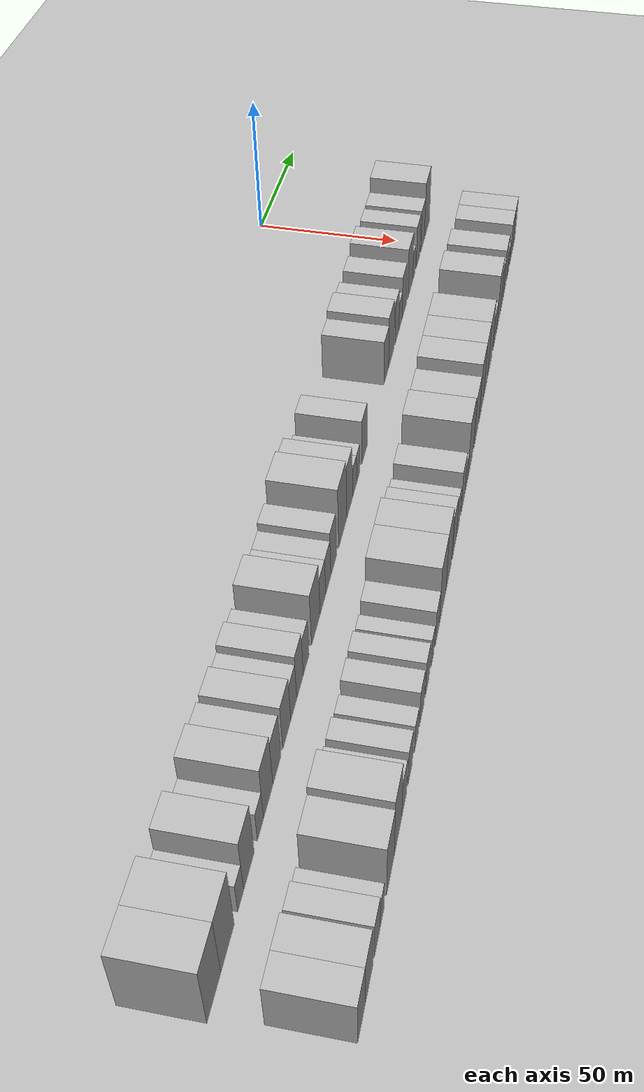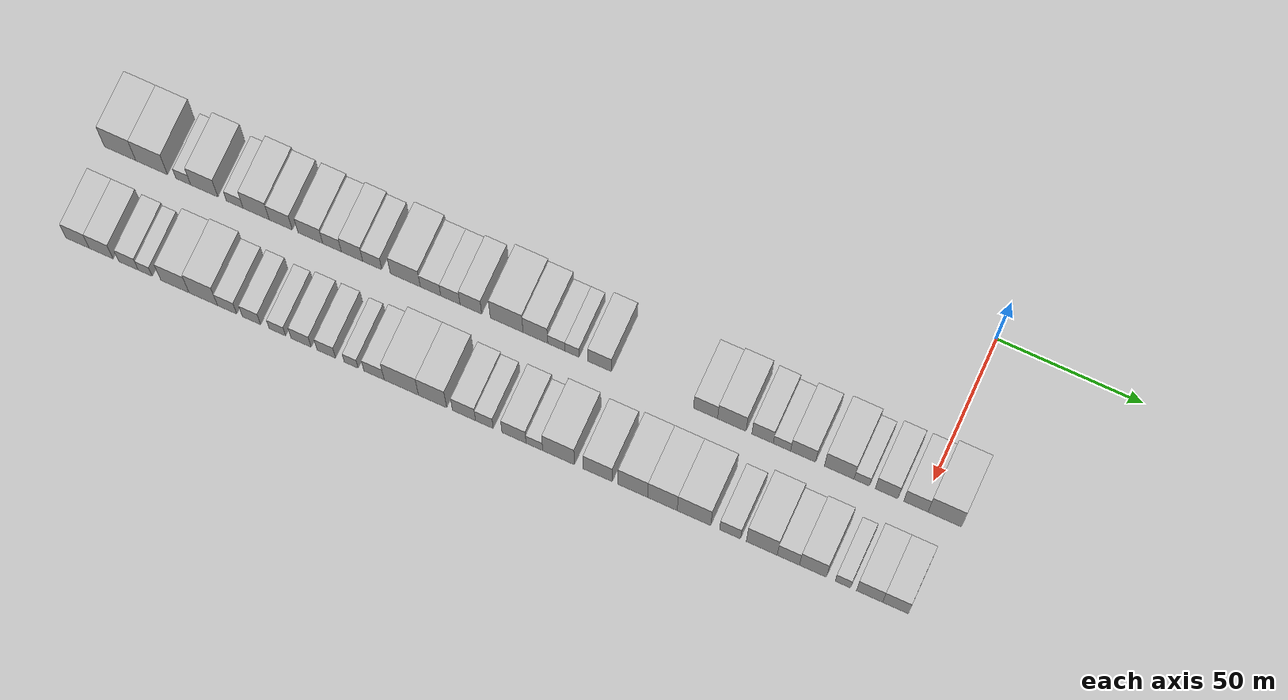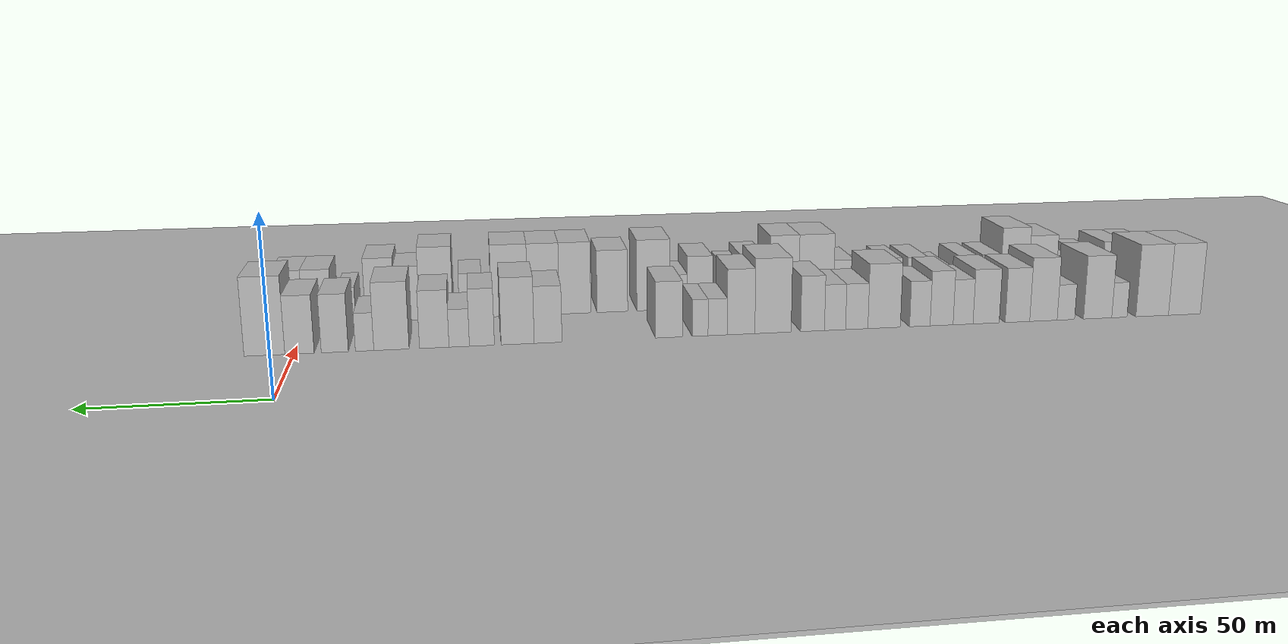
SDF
<sdf version="1.6">
 <world name="default">
  <include><name>ground_plane_1</name><uri>model://HANNAS_ground_plane</uri></include>
  <include>
   <name>ground_plane_2</name>
   <uri>model://HANNAS_ground_plane</uri>
   <pose>100 0 0  0 0 0</pose>
  </include>
  <model name="building_1">
   <static>1</static>
   <pose>50.0000 -278.4697 0 0.000000 0.000000 0.000000</pose>
   <link name="link">
    <pose>0 0 12.00 0 0 0</pose>
    <collision name="collision"><geometry><box><size>20.0000 11.0606 24.0000</size></box></geometry></collision>
    <visual name="visual">
     <cast_shadows>0</cast_shadows>
     <geometry><box><size>20.0000 11.0606 24.0000</size></box></geometry>
     <material>
      <script>
       <uri>model://HANNAS_wall/materials/scripts</uri>
       <uri>model://HANNAS_wall/materials/textures</uri>
       <name>vrc/HANNAS_wall</name>
      </script>
     </material>
    </visual>
   </link>
  </model>
  <model name="building_2">
   <static>1</static>
   <pose>50.0000 -267.3348 0 0.000000 0.000000 0.000000</pose>
   <link name="link">
    <pose>0 0 12.00 0 0 0</pose>
    <collision name="collision"><geometry><box><size>20.0000 11.2092 24.0000</size></box></geometry></collision>
    <visual name="visual">
     <cast_shadows>0</cast_shadows>
     <geometry><box><size>20.0000 11.2092 24.0000</size></box></geometry>
     <material>
      <script>
       <uri>model://HANNAS_wall/materials/scripts</uri>
       <uri>model://HANNAS_wall/materials/textures</uri>
       <name>vrc/HANNAS_wall</name>
      </script>
     </material>
    </visual>
   </link>
  </model>
  <model name="building_3">
   <static>1</static>
   <pose>50.0000 -256.1176 0 0.000000 0.000000 0.000000</pose>
   <link name="link">
    <pose>0 0 6.00 0 0 0</pose>
    <collision name="collision"><geometry><box><size>20.0000 5.2254 12.0000</size></box></geometry></collision>
    <visual name="visual">
     <cast_shadows>0</cast_shadows>
     <geometry><box><size>20.0000 5.2254 12.0000</size></box></geometry>
     <material>
      <script>
       <uri>model://HANNAS_wall/materials/scripts</uri>
       <uri>model://HANNAS_wall/materials/textures</uri>
       <name>vrc/HANNAS_wall</name>
      </script>
     </material>
    </visual>
   </link>
  </model>
  <model name="building_4">
   <static>1</static>
   <pose>50.0000 -248.7218 0 0.000000 0.000000 0.000000</pose>
   <link name="link">
    <pose>0 0 10.50 0 0 0</pose>
    <collision name="collision"><geometry><box><size>20.0000 9.5662 21.0000</size></box></geometry></collision>
    <visual name="visual">
     <cast_shadows>0</cast_shadows>
     <geometry><box><size>20.0000 9.5662 21.0000</size></box></geometry>
     <material>
      <script>
       <uri>model://HANNAS_wall/materials/scripts</uri>
       <uri>model://HANNAS_wall/materials/textures</uri>
       <name>vrc/HANNAS_wall</name>
      </script>
     </material>
    </visual>
   </link>
  </model>
  <model name="building_5">
   <static>1</static>
   <pose>50.0000 -238.0001 0 0.000000 0.000000 0.000000</pose>
   <link name="link">
    <pose>0 0 6.00 0 0 0</pose>
    <collision name="collision"><geometry><box><size>20.0000 5.8772 12.0000</size></box></geometry></collision>
    <visual name="visual">
     <cast_shadows>0</cast_shadows>
     <geometry><box><size>20.0000 5.8772 12.0000</size></box></geometry>
     <material>
      <script>
       <uri>model://HANNAS_wall/materials/scripts</uri>
       <uri>model://HANNAS_wall/materials/textures</uri>
       <name>vrc/HANNAS_wall</name>
      </script>
     </material>
    </visual>
   </link>
  </model>
  <model name="building_6">
   <static>1</static>
   <pose>50.0000 -230.4664 0 0.000000 0.000000 0.000000</pose>
   <link name="link">
    <pose>0 0 10.50 0 0 0</pose>
    <collision name="collision"><geometry><box><size>20.0000 9.1902 21.0000</size></box></geometry></collision>
    <visual name="visual">
     <cast_shadows>0</cast_shadows>
     <geometry><box><size>20.0000 9.1902 21.0000</size></box></geometry>
     <material>
      <script>
       <uri>model://HANNAS_wall/materials/scripts</uri>
       <uri>model://HANNAS_wall/materials/textures</uri>
       <name>vrc/HANNAS_wall</name>
      </script>
     </material>
    </visual>
   </link>
  </model>
  <model name="building_7">
   <static>1</static>
   <pose>50.0000 -221.8036 0 0.000000 0.000000 0.000000</pose>
   <link name="link">
    <pose>0 0 9.00 0 0 0</pose>
    <collision name="collision"><geometry><box><size>20.0000 8.1353 18.0000</size></box></geometry></collision>
    <visual name="visual">
     <cast_shadows>0</cast_shadows>
     <geometry><box><size>20.0000 8.1353 18.0000</size></box></geometry>
     <material>
      <script>
       <uri>model://HANNAS_wall/materials/scripts</uri>
       <uri>model://HANNAS_wall/materials/textures</uri>
       <name>vrc/HANNAS_wall</name>
      </script>
     </material>
    </visual>
   </link>
  </model>
  <model name="building_8">
   <static>1</static>
   <pose>50.0000 -211.4116 0 0.000000 0.000000 0.000000</pose>
   <link name="link">
    <pose>0 0 9.00 0 0 0</pose>
    <collision name="collision"><geometry><box><size>20.0000 8.6487 18.0000</size></box></geometry></collision>
    <visual name="visual">
     <cast_shadows>0</cast_shadows>
     <geometry><box><size>20.0000 8.6487 18.0000</size></box></geometry>
     <material>
      <script>
       <uri>model://HANNAS_wall/materials/scripts</uri>
       <uri>model://HANNAS_wall/materials/textures</uri>
       <name>vrc/HANNAS_wall</name>
      </script>
     </material>
    </visual>
   </link>
  </model>
  <model name="building_9">
   <static>1</static>
   <pose>50.0000 -203.8114 0 0.000000 0.000000 0.000000</pose>
   <link name="link">
    <pose>0 0 7.50 0 0 0</pose>
    <collision name="collision"><geometry><box><size>20.0000 6.5516 15.0000</size></box></geometry></collision>
    <visual name="visual">
     <cast_shadows>0</cast_shadows>
     <geometry><box><size>20.0000 6.5516 15.0000</size></box></geometry>
     <material>
      <script>
       <uri>model://HANNAS_wall/materials/scripts</uri>
       <uri>model://HANNAS_wall/materials/textures</uri>
       <name>vrc/HANNAS_wall</name>
      </script>
     </material>
    </visual>
   </link>
  </model>
  <model name="building_10">
   <static>1</static>
   <pose>50.0000 -196.7801 0 0.000000 0.000000 0.000000</pose>
   <link name="link">
    <pose>0 0 9.00 0 0 0</pose>
    <collision name="collision"><geometry><box><size>20.0000 7.5111 18.0000</size></box></geometry></collision>
    <visual name="visual">
     <cast_shadows>0</cast_shadows>
     <geometry><box><size>20.0000 7.5111 18.0000</size></box></geometry>
     <material>
      <script>
       <uri>model://HANNAS_wall/materials/scripts</uri>
       <uri>model://HANNAS_wall/materials/textures</uri>
       <name>vrc/HANNAS_wall</name>
      </script>
     </material>
    </visual>
   </link>
  </model>
  <model name="building_11">
   <static>1</static>
   <pose>50.0000 -189.6941 0 0.000000 0.000000 0.000000</pose>
   <link name="link">
    <pose>0 0 7.50 0 0 0</pose>
    <collision name="collision"><geometry><box><size>20.0000 6.6609 15.0000</size></box></geometry></collision>
    <visual name="visual">
     <cast_shadows>0</cast_shadows>
     <geometry><box><size>20.0000 6.6609 15.0000</size></box></geometry>
     <material>
      <script>
       <uri>model://HANNAS_wall/materials/scripts</uri>
       <uri>model://HANNAS_wall/materials/textures</uri>
       <name>vrc/HANNAS_wall</name>
      </script>
     </material>
    </visual>
   </link>
  </model>
  <model name="building_12">
   <static>1</static>
   <pose>50.0000 -178.1327 0 0.000000 0.000000 0.000000</pose>
   <link name="link">
    <pose>0 0 10.50 0 0 0</pose>
    <collision name="collision"><geometry><box><size>20.0000 10.4620 21.0000</size></box></geometry></collision>
    <visual name="visual">
     <cast_shadows>0</cast_shadows>
     <geometry><box><size>20.0000 10.4620 21.0000</size></box></geometry>
     <material>
      <script>
       <uri>model://HANNAS_wall/materials/scripts</uri>
       <uri>model://HANNAS_wall/materials/textures</uri>
       <name>vrc/HANNAS_wall</name>
      </script>
     </material>
    </visual>
   </link>
  </model>
  <model name="building_13">
   <static>1</static>
   <pose>50.0000 -169.3278 0 0.000000 0.000000 0.000000</pose>
   <link name="link">
    <pose>0 0 7.50 0 0 0</pose>
    <collision name="collision"><geometry><box><size>20.0000 7.1477 15.0000</size></box></geometry></collision>
    <visual name="visual">
     <cast_shadows>0</cast_shadows>
     <geometry><box><size>20.0000 7.1477 15.0000</size></box></geometry>
     <material>
      <script>
       <uri>model://HANNAS_wall/materials/scripts</uri>
       <uri>model://HANNAS_wall/materials/textures</uri>
       <name>vrc/HANNAS_wall</name>
      </script>
     </material>
    </visual>
   </link>
  </model>
  <model name="building_14">
   <static>1</static>
   <pose>50.0000 -162.3910 0 0.000000 0.000000 0.000000</pose>
   <link name="link">
    <pose>0 0 7.50 0 0 0</pose>
    <collision name="collision"><geometry><box><size>20.0000 6.7259 15.0000</size></box></geometry></collision>
    <visual name="visual">
     <cast_shadows>0</cast_shadows>
     <geometry><box><size>20.0000 6.7259 15.0000</size></box></geometry>
     <material>
      <script>
       <uri>model://HANNAS_wall/materials/scripts</uri>
       <uri>model://HANNAS_wall/materials/textures</uri>
       <name>vrc/HANNAS_wall</name>
      </script>
     </material>
    </visual>
   </link>
  </model>
  <model name="building_15">
   <static>1</static>
   <pose>50.0000 -155.2637 0 0.000000 0.000000 0.000000</pose>
   <link name="link">
    <pose>0 0 9.00 0 0 0</pose>
    <collision name="collision"><geometry><box><size>20.0000 7.5286 18.0000</size></box></geometry></collision>
    <visual name="visual">
     <cast_shadows>0</cast_shadows>
     <geometry><box><size>20.0000 7.5286 18.0000</size></box></geometry>
     <material>
      <script>
       <uri>model://HANNAS_wall/materials/scripts</uri>
       <uri>model://HANNAS_wall/materials/textures</uri>
       <name>vrc/HANNAS_wall</name>
      </script>
     </material>
    </visual>
   </link>
  </model>
  <model name="building_16">
   <static>1</static>
   <pose>50.0000 -142.8023 0 0.000000 0.000000 0.000000</pose>
   <link name="link">
    <pose>0 0 12.00 0 0 0</pose>
    <collision name="collision"><geometry><box><size>20.0000 11.3943 24.0000</size></box></geometry></collision>
    <visual name="visual">
     <cast_shadows>0</cast_shadows>
     <geometry><box><size>20.0000 11.3943 24.0000</size></box></geometry>
     <material>
      <script>
       <uri>model://HANNAS_wall/materials/scripts</uri>
       <uri>model://HANNAS_wall/materials/textures</uri>
       <name>vrc/HANNAS_wall</name>
      </script>
     </material>
    </visual>
   </link>
  </model>
  <model name="building_17">
   <static>1</static>
   <pose>50.0000 -132.8097 0 0.000000 0.000000 0.000000</pose>
   <link name="link">
    <pose>0 0 10.50 0 0 0</pose>
    <collision name="collision"><geometry><box><size>20.0000 8.5907 21.0000</size></box></geometry></collision>
    <visual name="visual">
     <cast_shadows>0</cast_shadows>
     <geometry><box><size>20.0000 8.5907 21.0000</size></box></geometry>
     <material>
      <script>
       <uri>model://HANNAS_wall/materials/scripts</uri>
       <uri>model://HANNAS_wall/materials/textures</uri>
       <name>vrc/HANNAS_wall</name>
      </script>
     </material>
    </visual>
   </link>
  </model>
  <model name="building_18">
   <static>1</static>
   <pose>50.0000 -125.5334 0 0.000000 0.000000 0.000000</pose>
   <link name="link">
    <pose>0 0 6.00 0 0 0</pose>
    <collision name="collision"><geometry><box><size>20.0000 5.9619 12.0000</size></box></geometry></collision>
    <visual name="visual">
     <cast_shadows>0</cast_shadows>
     <geometry><box><size>20.0000 5.9619 12.0000</size></box></geometry>
     <material>
      <script>
       <uri>model://HANNAS_wall/materials/scripts</uri>
       <uri>model://HANNAS_wall/materials/textures</uri>
       <name>vrc/HANNAS_wall</name>
      </script>
     </material>
    </visual>
   </link>
  </model>
  <model name="building_19">
   <static>1</static>
   <pose>50.0000 -120.1101 0 0.000000 0.000000 0.000000</pose>
   <link name="link">
    <pose>0 0 6.00 0 0 0</pose>
    <collision name="collision"><geometry><box><size>20.0000 4.8848 12.0000</size></box></geometry></collision>
    <visual name="visual">
     <cast_shadows>0</cast_shadows>
     <geometry><box><size>20.0000 4.8848 12.0000</size></box></geometry>
     <material>
      <script>
       <uri>model://HANNAS_wall/materials/scripts</uri>
       <uri>model://HANNAS_wall/materials/textures</uri>
       <name>vrc/HANNAS_wall</name>
      </script>
     </material>
    </visual>
   </link>
  </model>
  <model name="building_20">
   <static>1</static>
   <pose>50.0000 -110.5472 0 0.000000 0.000000 0.000000</pose>
   <link name="link">
    <pose>0 0 9.00 0 0 0</pose>
    <collision name="collision"><geometry><box><size>20.0000 8.2411 18.0000</size></box></geometry></collision>
    <visual name="visual">
     <cast_shadows>0</cast_shadows>
     <geometry><box><size>20.0000 8.2411 18.0000</size></box></geometry>
     <material>
      <script>
       <uri>model://HANNAS_wall/materials/scripts</uri>
       <uri>model://HANNAS_wall/materials/textures</uri>
       <name>vrc/HANNAS_wall</name>
      </script>
     </material>
    </visual>
   </link>
  </model>
  <model name="building_21">
   <static>1</static>
   <pose>50.0000 -73.9878 0 0.000000 0.000000 0.000000</pose>
   <link name="link">
    <pose>0 0 9.00 0 0 0</pose>
    <collision name="collision"><geometry><box><size>20.0000 8.2926 18.0000</size></box></geometry></collision>
    <visual name="visual">
     <cast_shadows>0</cast_shadows>
     <geometry><box><size>20.0000 8.2926 18.0000</size></box></geometry>
     <material>
      <script>
       <uri>model://HANNAS_wall/materials/scripts</uri>
       <uri>model://HANNAS_wall/materials/textures</uri>
       <name>vrc/HANNAS_wall</name>
      </script>
     </material>
    </visual>
   </link>
  </model>
  <model name="building_22">
   <static>1</static>
   <pose>50.0000 -64.9480 0 0.000000 0.000000 0.000000</pose>
   <link name="link">
    <pose>0 0 10.50 0 0 0</pose>
    <collision name="collision"><geometry><box><size>20.0000 9.7870 21.0000</size></box></geometry></collision>
    <visual name="visual">
     <cast_shadows>0</cast_shadows>
     <geometry><box><size>20.0000 9.7870 21.0000</size></box></geometry>
     <material>
      <script>
       <uri>model://HANNAS_wall/materials/scripts</uri>
       <uri>model://HANNAS_wall/materials/textures</uri>
       <name>vrc/HANNAS_wall</name>
      </script>
     </material>
    </visual>
   </link>
  </model>
  <model name="building_23">
   <static>1</static>
   <pose>50.0000 -54.3780 0 0.000000 0.000000 0.000000</pose>
   <link name="link">
    <pose>0 0 9.00 0 0 0</pose>
    <collision name="collision"><geometry><box><size>20.0000 7.3532 18.0000</size></box></geometry></collision>
    <visual name="visual">
     <cast_shadows>0</cast_shadows>
     <geometry><box><size>20.0000 7.3532 18.0000</size></box></geometry>
     <material>
      <script>
       <uri>model://HANNAS_wall/materials/scripts</uri>
       <uri>model://HANNAS_wall/materials/textures</uri>
       <name>vrc/HANNAS_wall</name>
      </script>
     </material>
    </visual>
   </link>
  </model>
  <model name="building_24">
   <static>1</static>
   <pose>50.0000 -47.7225 0 0.000000 0.000000 0.000000</pose>
   <link name="link">
    <pose>0 0 6.00 0 0 0</pose>
    <collision name="collision"><geometry><box><size>20.0000 5.9577 12.0000</size></box></geometry></collision>
    <visual name="visual">
     <cast_shadows>0</cast_shadows>
     <geometry><box><size>20.0000 5.9577 12.0000</size></box></geometry>
     <material>
      <script>
       <uri>model://HANNAS_wall/materials/scripts</uri>
       <uri>model://HANNAS_wall/materials/textures</uri>
       <name>vrc/HANNAS_wall</name>
      </script>
     </material>
    </visual>
   </link>
  </model>
  <model name="building_25">
   <static>1</static>
   <pose>50.0000 -40.4584 0 0.000000 0.000000 0.000000</pose>
   <link name="link">
    <pose>0 0 9.00 0 0 0</pose>
    <collision name="collision"><geometry><box><size>20.0000 8.5706 18.0000</size></box></geometry></collision>
    <visual name="visual">
     <cast_shadows>0</cast_shadows>
     <geometry><box><size>20.0000 8.5706 18.0000</size></box></geometry>
     <material>
      <script>
       <uri>model://HANNAS_wall/materials/scripts</uri>
       <uri>model://HANNAS_wall/materials/textures</uri>
       <name>vrc/HANNAS_wall</name>
      </script>
     </material>
    </visual>
   </link>
  </model>
  <model name="building_26">
   <static>1</static>
   <pose>50.0000 -28.0884 0 0.000000 0.000000 0.000000</pose>
   <link name="link">
    <pose>0 0 10.50 0 0 0</pose>
    <collision name="collision"><geometry><box><size>20.0000 10.1693 21.0000</size></box></geometry></collision>
    <visual name="visual">
     <cast_shadows>0</cast_shadows>
     <geometry><box><size>20.0000 10.1693 21.0000</size></box></geometry>
     <material>
      <script>
       <uri>model://HANNAS_wall/materials/scripts</uri>
       <uri>model://HANNAS_wall/materials/textures</uri>
       <name>vrc/HANNAS_wall</name>
      </script>
     </material>
    </visual>
   </link>
  </model>
  <model name="building_27">
   <static>1</static>
   <pose>50.0000 -20.3685 0 0.000000 0.000000 0.000000</pose>
   <link name="link">
    <pose>0 0 6.00 0 0 0</pose>
    <collision name="collision"><geometry><box><size>20.0000 5.2705 12.0000</size></box></geometry></collision>
    <visual name="visual">
     <cast_shadows>0</cast_shadows>
     <geometry><box><size>20.0000 5.2705 12.0000</size></box></geometry>
     <material>
      <script>
       <uri>model://HANNAS_wall/materials/scripts</uri>
       <uri>model://HANNAS_wall/materials/textures</uri>
       <name>vrc/HANNAS_wall</name>
      </script>
     </material>
    </visual>
   </link>
  </model>
  <model name="building_28">
   <static>1</static>
   <pose>50.0000 -11.8762 0 0.000000 0.000000 0.000000</pose>
   <link name="link">
    <pose>0 0 9.00 0 0 0</pose>
    <collision name="collision"><geometry><box><size>20.0000 7.7143 18.0000</size></box></geometry></collision>
    <visual name="visual">
     <cast_shadows>0</cast_shadows>
     <geometry><box><size>20.0000 7.7143 18.0000</size></box></geometry>
     <material>
      <script>
       <uri>model://HANNAS_wall/materials/scripts</uri>
       <uri>model://HANNAS_wall/materials/textures</uri>
       <name>vrc/HANNAS_wall</name>
      </script>
     </material>
    </visual>
   </link>
  </model>
  <model name="building_29">
   <static>1</static>
   <pose>50.0000 -1.8797 0 0.000000 0.000000 0.000000</pose>
   <link name="link">
    <pose>0 0 9.00 0 0 0</pose>
    <collision name="collision"><geometry><box><size>20.0000 8.2786 18.0000</size></box></geometry></collision>
    <visual name="visual">
     <cast_shadows>0</cast_shadows>
     <geometry><box><size>20.0000 8.2786 18.0000</size></box></geometry>
     <material>
      <script>
       <uri>model://HANNAS_wall/materials/scripts</uri>
       <uri>model://HANNAS_wall/materials/textures</uri>
       <name>vrc/HANNAS_wall</name>
      </script>
     </material>
    </visual>
   </link>
  </model>
  <model name="building_30">
   <static>1</static>
   <pose>50.0000 7.9761 0 0.000000 0.000000 0.000000</pose>
   <link name="link">
    <pose>0 0 12.00 0 0 0</pose>
    <collision name="collision"><geometry><box><size>20.0000 11.4330 24.0000</size></box></geometry></collision>
    <visual name="visual">
     <cast_shadows>0</cast_shadows>
     <geometry><box><size>20.0000 11.4330 24.0000</size></box></geometry>
     <material>
      <script>
       <uri>model://HANNAS_wall/materials/scripts</uri>
       <uri>model://HANNAS_wall/materials/textures</uri>
       <name>vrc/HANNAS_wall</name>
      </script>
     </material>
    </visual>
   </link>
  </model>
  <model name="building_61">
   <static>1</static>
   <pose>82.0000 -277.8554 0 0.000000 0.000000 0.000000</pose>
   <link name="link">
    <pose>0 0 9.00 0 0 0</pose>
    <collision name="collision"><geometry><box><size>20.0000 8.2891 18.0000</size></box></geometry></collision>
    <visual name="visual">
     <cast_shadows>0</cast_shadows>
     <geometry><box><size>20.0000 8.2891 18.0000</size></box></geometry>
     <material>
      <script>
       <uri>model://HANNAS_wall/materials/scripts</uri>
       <uri>model://HANNAS_wall/materials/textures</uri>
       <name>vrc/HANNAS_wall</name>
      </script>
     </material>
    </visual>
   </link>
  </model>
  <model name="building_62">
   <static>1</static>
   <pose>82.0000 -269.5396 0 0.000000 0.000000 0.000000</pose>
   <link name="link">
    <pose>0 0 9.00 0 0 0</pose>
    <collision name="collision"><geometry><box><size>20.0000 8.3425 18.0000</size></box></geometry></collision>
    <visual name="visual">
     <cast_shadows>0</cast_shadows>
     <geometry><box><size>20.0000 8.3425 18.0000</size></box></geometry>
     <material>
      <script>
       <uri>model://HANNAS_wall/materials/scripts</uri>
       <uri>model://HANNAS_wall/materials/textures</uri>
       <name>vrc/HANNAS_wall</name>
      </script>
     </material>
    </visual>
   </link>
  </model>
  <model name="building_63">
   <static>1</static>
   <pose>82.0000 -259.9513 0 0.000000 0.000000 0.000000</pose>
   <link name="link">
    <pose>0 0 7.50 0 0 0</pose>
    <collision name="collision"><geometry><box><size>20.0000 6.8341 15.0000</size></box></geometry></collision>
    <visual name="visual">
     <cast_shadows>0</cast_shadows>
     <geometry><box><size>20.0000 6.8341 15.0000</size></box></geometry>
     <material>
      <script>
       <uri>model://HANNAS_wall/materials/scripts</uri>
       <uri>model://HANNAS_wall/materials/textures</uri>
       <name>vrc/HANNAS_wall</name>
      </script>
     </material>
    </visual>
   </link>
  </model>
  <model name="building_64">
   <static>1</static>
   <pose>82.0000 -254.0857 0 0.000000 0.000000 0.000000</pose>
   <link name="link">
    <pose>0 0 6.00 0 0 0</pose>
    <collision name="collision"><geometry><box><size>20.0000 4.8971 12.0000</size></box></geometry></collision>
    <visual name="visual">
     <cast_shadows>0</cast_shadows>
     <geometry><box><size>20.0000 4.8971 12.0000</size></box></geometry>
     <material>
      <script>
       <uri>model://HANNAS_wall/materials/scripts</uri>
       <uri>model://HANNAS_wall/materials/textures</uri>
       <name>vrc/HANNAS_wall</name>
      </script>
     </material>
    </visual>
   </link>
  </model>
  <model name="building_65">
   <static>1</static>
   <pose>82.0000 -243.6845 0 0.000000 0.000000 0.000000</pose>
   <link name="link">
    <pose>0 0 10.50 0 0 0</pose>
    <collision name="collision"><geometry><box><size>20.0000 9.9052 21.0000</size></box></geometry></collision>
    <visual name="visual">
     <cast_shadows>0</cast_shadows>
     <geometry><box><size>20.0000 9.9052 21.0000</size></box></geometry>
     <material>
      <script>
       <uri>model://HANNAS_wall/materials/scripts</uri>
       <uri>model://HANNAS_wall/materials/textures</uri>
       <name>vrc/HANNAS_wall</name>
      </script>
     </material>
    </visual>
   </link>
  </model>
  <model name="building_66">
   <static>1</static>
   <pose>82.0000 -233.7292 0 0.000000 0.000000 0.000000</pose>
   <link name="link">
    <pose>0 0 12.00 0 0 0</pose>
    <collision name="collision"><geometry><box><size>20.0000 10.0055 24.0000</size></box></geometry></collision>
    <visual name="visual">
     <cast_shadows>0</cast_shadows>
     <geometry><box><size>20.0000 10.0055 24.0000</size></box></geometry>
     <material>
      <script>
       <uri>model://HANNAS_wall/materials/scripts</uri>
       <uri>model://HANNAS_wall/materials/textures</uri>
       <name>vrc/HANNAS_wall</name>
      </script>
     </material>
    </visual>
   </link>
  </model>
  <model name="building_67">
   <static>1</static>
   <pose>82.0000 -225.3629 0 0.000000 0.000000 0.000000</pose>
   <link name="link">
    <pose>0 0 7.50 0 0 0</pose>
    <collision name="collision"><geometry><box><size>20.0000 6.7270 15.0000</size></box></geometry></collision>
    <visual name="visual">
     <cast_shadows>0</cast_shadows>
     <geometry><box><size>20.0000 6.7270 15.0000</size></box></geometry>
     <material>
      <script>
       <uri>model://HANNAS_wall/materials/scripts</uri>
       <uri>model://HANNAS_wall/materials/textures</uri>
       <name>vrc/HANNAS_wall</name>
      </script>
     </material>
    </visual>
   </link>
  </model>
  <model name="building_68">
   <static>1</static>
   <pose>82.0000 -216.8171 0 0.000000 0.000000 0.000000</pose>
   <link name="link">
    <pose>0 0 7.50 0 0 0</pose>
    <collision name="collision"><geometry><box><size>20.0000 6.3647 15.0000</size></box></geometry></collision>
    <visual name="visual">
     <cast_shadows>0</cast_shadows>
     <geometry><box><size>20.0000 6.3647 15.0000</size></box></geometry>
     <material>
      <script>
       <uri>model://HANNAS_wall/materials/scripts</uri>
       <uri>model://HANNAS_wall/materials/textures</uri>
       <name>vrc/HANNAS_wall</name>
      </script>
     </material>
    </visual>
   </link>
  </model>
  <model name="building_69">
   <static>1</static>
   <pose>82.0000 -207.7804 0 0.000000 0.000000 0.000000</pose>
   <link name="link">
    <pose>0 0 6.00 0 0 0</pose>
    <collision name="collision"><geometry><box><size>20.0000 5.7086 12.0000</size></box></geometry></collision>
    <visual name="visual">
     <cast_shadows>0</cast_shadows>
     <geometry><box><size>20.0000 5.7086 12.0000</size></box></geometry>
     <material>
      <script>
       <uri>model://HANNAS_wall/materials/scripts</uri>
       <uri>model://HANNAS_wall/materials/textures</uri>
       <name>vrc/HANNAS_wall</name>
      </script>
     </material>
    </visual>
   </link>
  </model>
  <model name="building_70">
   <static>1</static>
   <pose>82.0000 -199.4276 0 0.000000 0.000000 0.000000</pose>
   <link name="link">
    <pose>0 0 7.50 0 0 0</pose>
    <collision name="collision"><geometry><box><size>20.0000 6.9970 15.0000</size></box></geometry></collision>
    <visual name="visual">
     <cast_shadows>0</cast_shadows>
     <geometry><box><size>20.0000 6.9970 15.0000</size></box></geometry>
     <material>
      <script>
       <uri>model://HANNAS_wall/materials/scripts</uri>
       <uri>model://HANNAS_wall/materials/textures</uri>
       <name>vrc/HANNAS_wall</name>
      </script>
     </material>
    </visual>
   </link>
  </model>
  <model name="building_71">
   <static>1</static>
   <pose>82.0000 -190.6926 0 0.000000 0.000000 0.000000</pose>
   <link name="link">
    <pose>0 0 7.50 0 0 0</pose>
    <collision name="collision"><geometry><box><size>20.0000 6.4731 15.0000</size></box></geometry></collision>
    <visual name="visual">
     <cast_shadows>0</cast_shadows>
     <geometry><box><size>20.0000 6.4731 15.0000</size></box></geometry>
     <material>
      <script>
       <uri>model://HANNAS_wall/materials/scripts</uri>
       <uri>model://HANNAS_wall/materials/textures</uri>
       <name>vrc/HANNAS_wall</name>
      </script>
     </material>
    </visual>
   </link>
  </model>
  <model name="building_72">
   <static>1</static>
   <pose>82.0000 -182.0325 0 0.000000 0.000000 0.000000</pose>
   <link name="link">
    <pose>0 0 6.00 0 0 0</pose>
    <collision name="collision"><geometry><box><size>20.0000 4.8470 12.0000</size></box></geometry></collision>
    <visual name="visual">
     <cast_shadows>0</cast_shadows>
     <geometry><box><size>20.0000 4.8470 12.0000</size></box></geometry>
     <material>
      <script>
       <uri>model://HANNAS_wall/materials/scripts</uri>
       <uri>model://HANNAS_wall/materials/textures</uri>
       <name>vrc/HANNAS_wall</name>
      </script>
     </material>
    </visual>
   </link>
  </model>
  <model name="building_73">
   <static>1</static>
   <pose>82.0000 -174.0696 0 0.000000 0.000000 0.000000</pose>
   <link name="link">
    <pose>0 0 7.50 0 0 0</pose>
    <collision name="collision"><geometry><box><size>20.0000 7.0788 15.0000</size></box></geometry></collision>
    <visual name="visual">
     <cast_shadows>0</cast_shadows>
     <geometry><box><size>20.0000 7.0788 15.0000</size></box></geometry>
     <material>
      <script>
       <uri>model://HANNAS_wall/materials/scripts</uri>
       <uri>model://HANNAS_wall/materials/textures</uri>
       <name>vrc/HANNAS_wall</name>
      </script>
     </material>
    </visual>
   </link>
  </model>
  <model name="building_74">
   <static>1</static>
   <pose>82.0000 -164.5805 0 0.000000 0.000000 0.000000</pose>
   <link name="link">
    <pose>0 0 12.00 0 0 0</pose>
    <collision name="collision"><geometry><box><size>20.0000 11.8994 24.0000</size></box></geometry></collision>
    <visual name="visual">
     <cast_shadows>0</cast_shadows>
     <geometry><box><size>20.0000 11.8994 24.0000</size></box></geometry>
     <material>
      <script>
       <uri>model://HANNAS_wall/materials/scripts</uri>
       <uri>model://HANNAS_wall/materials/textures</uri>
       <name>vrc/HANNAS_wall</name>
      </script>
     </material>
    </visual>
   </link>
  </model>
  <model name="building_75">
   <static>1</static>
   <pose>82.0000 -153.7266 0 0.000000 0.000000 0.000000</pose>
   <link name="link">
    <pose>0 0 12.00 0 0 0</pose>
    <collision name="collision"><geometry><box><size>20.0000 9.8084 24.0000</size></box></geometry></collision>
    <visual name="visual">
     <cast_shadows>0</cast_shadows>
     <geometry><box><size>20.0000 9.8084 24.0000</size></box></geometry>
     <material>
      <script>
       <uri>model://HANNAS_wall/materials/scripts</uri>
       <uri>model://HANNAS_wall/materials/textures</uri>
       <name>vrc/HANNAS_wall</name>
      </script>
     </material>
    </visual>
   </link>
  </model>
  <model name="building_76">
   <static>1</static>
   <pose>82.0000 -142.8274 0 0.000000 0.000000 0.000000</pose>
   <link name="link">
    <pose>0 0 9.00 0 0 0</pose>
    <collision name="collision"><geometry><box><size>20.0000 7.9900 18.0000</size></box></geometry></collision>
    <visual name="visual">
     <cast_shadows>0</cast_shadows>
     <geometry><box><size>20.0000 7.9900 18.0000</size></box></geometry>
     <material>
      <script>
       <uri>model://HANNAS_wall/materials/scripts</uri>
       <uri>model://HANNAS_wall/materials/textures</uri>
       <name>vrc/HANNAS_wall</name>
      </script>
     </material>
    </visual>
   </link>
  </model>
  <model name="building_77">
   <static>1</static>
   <pose>82.0000 -135.7622 0 0.000000 0.000000 0.000000</pose>
   <link name="link">
    <pose>0 0 7.50 0 0 0</pose>
    <collision name="collision"><geometry><box><size>20.0000 6.1403 15.0000</size></box></geometry></collision>
    <visual name="visual">
     <cast_shadows>0</cast_shadows>
     <geometry><box><size>20.0000 6.1403 15.0000</size></box></geometry>
     <material>
      <script>
       <uri>model://HANNAS_wall/materials/scripts</uri>
       <uri>model://HANNAS_wall/materials/textures</uri>
       <name>vrc/HANNAS_wall</name>
      </script>
     </material>
    </visual>
   </link>
  </model>
  <model name="building_78">
   <static>1</static>
   <pose>82.0000 -125.5248 0 0.000000 0.000000 0.000000</pose>
   <link name="link">
    <pose>0 0 9.00 0 0 0</pose>
    <collision name="collision"><geometry><box><size>20.0000 8.3344 18.0000</size></box></geometry></collision>
    <visual name="visual">
     <cast_shadows>0</cast_shadows>
     <geometry><box><size>20.0000 8.3344 18.0000</size></box></geometry>
     <material>
      <script>
       <uri>model://HANNAS_wall/materials/scripts</uri>
       <uri>model://HANNAS_wall/materials/textures</uri>
       <name>vrc/HANNAS_wall</name>
      </script>
     </material>
    </visual>
   </link>
  </model>
  <model name="building_79">
   <static>1</static>
   <pose>82.0000 -118.4855 0 0.000000 0.000000 0.000000</pose>
   <link name="link">
    <pose>0 0 6.00 0 0 0</pose>
    <collision name="collision"><geometry><box><size>20.0000 5.7442 12.0000</size></box></geometry></collision>
    <visual name="visual">
     <cast_shadows>0</cast_shadows>
     <geometry><box><size>20.0000 5.7442 12.0000</size></box></geometry>
     <material>
      <script>
       <uri>model://HANNAS_wall/materials/scripts</uri>
       <uri>model://HANNAS_wall/materials/textures</uri>
       <name>vrc/HANNAS_wall</name>
      </script>
     </material>
    </visual>
   </link>
  </model>
  <model name="building_80">
   <static>1</static>
   <pose>82.0000 -110.1300 0 0.000000 0.000000 0.000000</pose>
   <link name="link">
    <pose>0 0 12.00 0 0 0</pose>
    <collision name="collision"><geometry><box><size>20.0000 10.9669 24.0000</size></box></geometry></collision>
    <visual name="visual">
     <cast_shadows>0</cast_shadows>
     <geometry><box><size>20.0000 10.9669 24.0000</size></box></geometry>
     <material>
      <script>
       <uri>model://HANNAS_wall/materials/scripts</uri>
       <uri>model://HANNAS_wall/materials/textures</uri>
       <name>vrc/HANNAS_wall</name>
      </script>
     </material>
    </visual>
   </link>
  </model>
  <model name="building_81">
   <static>1</static>
   <pose>82.0000 -96.6548 0 0.000000 0.000000 0.000000</pose>
   <link name="link">
    <pose>0 0 10.50 0 0 0</pose>
    <collision name="collision"><geometry><box><size>20.0000 9.9836 21.0000</size></box></geometry></collision>
    <visual name="visual">
     <cast_shadows>0</cast_shadows>
     <geometry><box><size>20.0000 9.9836 21.0000</size></box></geometry>
     <material>
      <script>
       <uri>model://HANNAS_wall/materials/scripts</uri>
       <uri>model://HANNAS_wall/materials/textures</uri>
       <name>vrc/HANNAS_wall</name>
      </script>
     </material>
    </visual>
   </link>
  </model>
  <model name="building_82">
   <static>1</static>
   <pose>82.0000 -84.5716 0 0.000000 0.000000 0.000000</pose>
   <link name="link">
    <pose>0 0 12.00 0 0 0</pose>
    <collision name="collision"><geometry><box><size>20.0000 10.1828 24.0000</size></box></geometry></collision>
    <visual name="visual">
     <cast_shadows>0</cast_shadows>
     <geometry><box><size>20.0000 10.1828 24.0000</size></box></geometry>
     <material>
      <script>
       <uri>model://HANNAS_wall/materials/scripts</uri>
       <uri>model://HANNAS_wall/materials/textures</uri>
       <name>vrc/HANNAS_wall</name>
      </script>
     </material>
    </visual>
   </link>
  </model>
  <model name="building_83">
   <static>1</static>
   <pose>82.0000 -74.4212 0 0.000000 0.000000 0.000000</pose>
   <link name="link">
    <pose>0 0 12.00 0 0 0</pose>
    <collision name="collision"><geometry><box><size>20.0000 10.1178 24.0000</size></box></geometry></collision>
    <visual name="visual">
     <cast_shadows>0</cast_shadows>
     <geometry><box><size>20.0000 10.1178 24.0000</size></box></geometry>
     <material>
      <script>
       <uri>model://HANNAS_wall/materials/scripts</uri>
       <uri>model://HANNAS_wall/materials/textures</uri>
       <name>vrc/HANNAS_wall</name>
      </script>
     </material>
    </visual>
   </link>
  </model>
  <model name="building_84">
   <static>1</static>
   <pose>82.0000 -63.6096 0 0.000000 0.000000 0.000000</pose>
   <link name="link">
    <pose>0 0 12.00 0 0 0</pose>
    <collision name="collision"><geometry><box><size>20.0000 11.5054 24.0000</size></box></geometry></collision>
    <visual name="visual">
     <cast_shadows>0</cast_shadows>
     <geometry><box><size>20.0000 11.5054 24.0000</size></box></geometry>
     <material>
      <script>
       <uri>model://HANNAS_wall/materials/scripts</uri>
       <uri>model://HANNAS_wall/materials/textures</uri>
       <name>vrc/HANNAS_wall</name>
      </script>
     </material>
    </visual>
   </link>
  </model>
  <model name="building_85">
   <static>1</static>
   <pose>82.0000 -51.2688 0 0.000000 0.000000 0.000000</pose>
   <link name="link">
    <pose>0 0 7.50 0 0 0</pose>
    <collision name="collision"><geometry><box><size>20.0000 7.1763 15.0000</size></box></geometry></collision>
    <visual name="visual">
     <cast_shadows>0</cast_shadows>
     <geometry><box><size>20.0000 7.1763 15.0000</size></box></geometry>
     <material>
      <script>
       <uri>model://HANNAS_wall/materials/scripts</uri>
       <uri>model://HANNAS_wall/materials/textures</uri>
       <name>vrc/HANNAS_wall</name>
      </script>
     </material>
    </visual>
   </link>
  </model>
  <model name="building_86">
   <static>1</static>
   <pose>82.0000 -40.4096 0 0.000000 0.000000 0.000000</pose>
   <link name="link">
    <pose>0 0 12.00 0 0 0</pose>
    <collision name="collision"><geometry><box><size>20.0000 10.5422 24.0000</size></box></geometry></collision>
    <visual name="visual">
     <cast_shadows>0</cast_shadows>
     <geometry><box><size>20.0000 10.5422 24.0000</size></box></geometry>
     <material>
      <script>
       <uri>model://HANNAS_wall/materials/scripts</uri>
       <uri>model://HANNAS_wall/materials/textures</uri>
       <name>vrc/HANNAS_wall</name>
      </script>
     </material>
    </visual>
   </link>
  </model>
  <model name="building_87">
   <static>1</static>
   <pose>82.0000 -31.3382 0 0.000000 0.000000 0.000000</pose>
   <link name="link">
    <pose>0 0 9.00 0 0 0</pose>
    <collision name="collision"><geometry><box><size>20.0000 7.6005 18.0000</size></box></geometry></collision>
    <visual name="visual">
     <cast_shadows>0</cast_shadows>
     <geometry><box><size>20.0000 7.6005 18.0000</size></box></geometry>
     <material>
      <script>
       <uri>model://HANNAS_wall/materials/scripts</uri>
       <uri>model://HANNAS_wall/materials/textures</uri>
       <name>vrc/HANNAS_wall</name>
      </script>
     </material>
    </visual>
   </link>
  </model>
  <model name="building_88">
   <static>1</static>
   <pose>82.0000 -22.9500 0 0.000000 0.000000 0.000000</pose>
   <link name="link">
    <pose>0 0 10.50 0 0 0</pose>
    <collision name="collision"><geometry><box><size>20.0000 9.1758 21.0000</size></box></geometry></collision>
    <visual name="visual">
     <cast_shadows>0</cast_shadows>
     <geometry><box><size>20.0000 9.1758 21.0000</size></box></geometry>
     <material>
      <script>
       <uri>model://HANNAS_wall/materials/scripts</uri>
       <uri>model://HANNAS_wall/materials/textures</uri>
       <name>vrc/HANNAS_wall</name>
      </script>
     </material>
    </visual>
   </link>
  </model>
  <model name="building_89">
   <static>1</static>
   <pose>82.0000 -12.7396 0 0.000000 0.000000 0.000000</pose>
   <link name="link">
    <pose>0 0 6.00 0 0 0</pose>
    <collision name="collision"><geometry><box><size>20.0000 5.2451 12.0000</size></box></geometry></collision>
    <visual name="visual">
     <cast_shadows>0</cast_shadows>
     <geometry><box><size>20.0000 5.2451 12.0000</size></box></geometry>
     <material>
      <script>
       <uri>model://HANNAS_wall/materials/scripts</uri>
       <uri>model://HANNAS_wall/materials/textures</uri>
       <name>vrc/HANNAS_wall</name>
      </script>
     </material>
    </visual>
   </link>
  </model>
  <model name="building_90">
   <static>1</static>
   <pose>82.0000 -3.6642 0 0.000000 0.000000 0.000000</pose>
   <link name="link">
    <pose>0 0 9.00 0 0 0</pose>
    <collision name="collision"><geometry><box><size>20.0000 8.9056 18.0000</size></box></geometry></collision>
    <visual name="visual">
     <cast_shadows>0</cast_shadows>
     <geometry><box><size>20.0000 8.9056 18.0000</size></box></geometry>
     <material>
      <script>
       <uri>model://HANNAS_wall/materials/scripts</uri>
       <uri>model://HANNAS_wall/materials/textures</uri>
       <name>vrc/HANNAS_wall</name>
      </script>
     </material>
    </visual>
   </link>
  </model>
  <model name="building_91">
   <static>1</static>
   <pose>82.0000 5.1485 0 0.000000 0.000000 0.000000</pose>
   <link name="link">
    <pose>0 0 9.00 0 0 0</pose>
    <collision name="collision"><geometry><box><size>20.0000 8.7198 18.0000</size></box></geometry></collision>
    <visual name="visual">
     <cast_shadows>0</cast_shadows>
     <geometry><box><size>20.0000 8.7198 18.0000</size></box></geometry>
     <material>
      <script>
       <uri>model://HANNAS_wall/materials/scripts</uri>
       <uri>model://HANNAS_wall/materials/textures</uri>
       <name>vrc/HANNAS_wall</name>
      </script>
     </material>
    </visual>
   </link>
  </model>
 </world>
</sdf>
